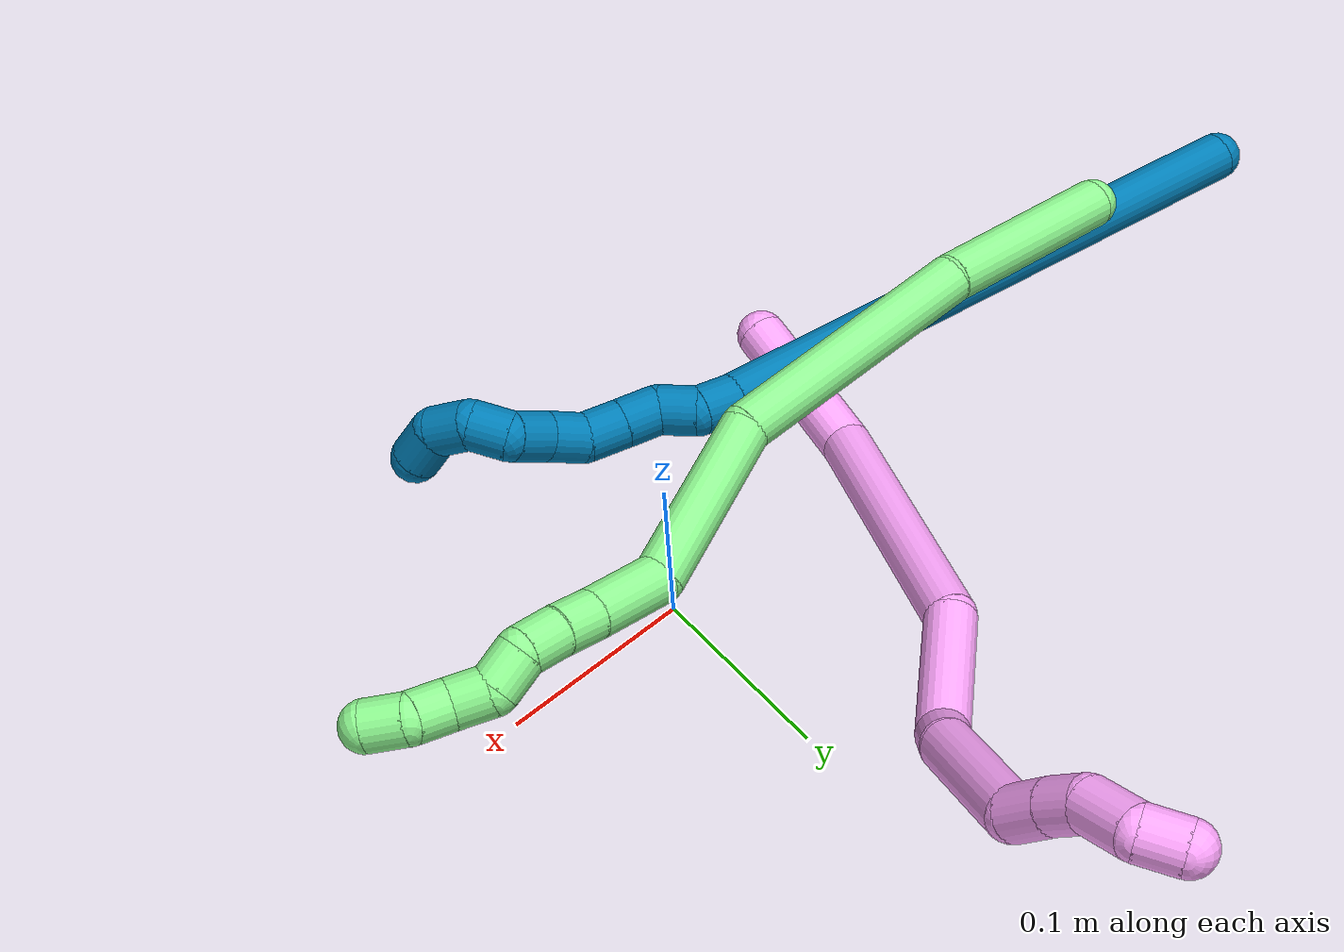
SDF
<sdf version="1.7">
 <world name="default">
  <model name="4">
   <static>0</static>
   <link name="4">
    <collision name="collision-cylinder-e_1_1_4">
     <pose>-0.00235 0.033669 0.022317 -0.985454 -0.05811 0.031205</pose>
     <geometry><cylinder><radius>0.0125</radius><length>0.080925</length></cylinder></geometry>
     <surface>
      <friction><ode><mu>1.16</mu><mu2>1.16</mu2><slip1>0</slip1><slip2>0</slip2></ode></friction>
      <contact><ode><kp>1e+06</kp><kd>1</kd><max_vel>0</max_vel><min_depth>0.001</min_depth></ode></contact>
     </surface>
    </collision>
    <visual name="visual-cylinder-e_1_1_4">
     <pose>-0.00235 0.033669 0.022317 -0.985454 -0.05811 0.031205</pose>
     <geometry><cylinder><radius>0.0125</radius><length>0.080925</length></cylinder></geometry>
     <material><ambient>1 0.65098 0.996078 1</ambient></material>
    </visual>
    <collision name="collision-cylinder-e_2_4_5">
     <pose>-0.016214 0.106801 0.111597 -0.532527 -0.147071 0.040179</pose>
     <geometry><cylinder><radius>0.0125</radius><length>0.157147</length></cylinder></geometry>
     <surface>
      <friction><ode><mu>1.16</mu><mu2>1.16</mu2><slip1>0</slip1><slip2>0</slip2></ode></friction>
      <contact><ode><kp>1e+06</kp><kd>1</kd><max_vel>0</max_vel><min_depth>0.001</min_depth></ode></contact>
     </surface>
    </collision>
    <visual name="visual-cylinder-e_2_4_5">
     <pose>-0.016214 0.106801 0.111597 -0.532527 -0.147071 0.040179</pose>
     <geometry><cylinder><radius>0.0125</radius><length>0.157147</length></cylinder></geometry>
     <material><ambient>1 0.65098 0.996078 1</ambient></material>
    </visual>
    <collision name="collision-cylinder-e_3_5_6">
     <pose>-0.017889 0.159327 0.208093 -0.41647 0.295739 -0.062928</pose>
     <geometry><cylinder><radius>0.0125</radius><length>0.06752</length></cylinder></geometry>
     <surface>
      <friction><ode><mu>1.16</mu><mu2>1.16</mu2><slip1>0</slip1><slip2>0</slip2></ode></friction>
      <contact><ode><kp>1e+06</kp><kd>1</kd><max_vel>0</max_vel><min_depth>0.001</min_depth></ode></contact>
     </surface>
    </collision>
    <visual name="visual-cylinder-e_3_5_6">
     <pose>-0.017889 0.159327 0.208093 -0.41647 0.295739 -0.062928</pose>
     <geometry><cylinder><radius>0.0125</radius><length>0.06752</length></cylinder></geometry>
     <material><ambient>1 0.65098 0.996078 1</ambient></material>
    </visual>
    <collision name="collision-cylinder-e_4_6_7">
     <pose>-0.01097 0.17315 0.247457 -0.077043 -0.28796 0.011175</pose>
     <geometry><cylinder><radius>0.0125</radius><length>0.020567</length></cylinder></geometry>
     <surface>
      <friction><ode><mu>1.16</mu><mu2>1.16</mu2><slip1>0</slip1><slip2>0</slip2></ode></friction>
      <contact><ode><kp>1e+06</kp><kd>1</kd><max_vel>0</max_vel><min_depth>0.001</min_depth></ode></contact>
     </surface>
    </collision>
    <visual name="visual-cylinder-e_4_6_7">
     <pose>-0.01097 0.17315 0.247457 -0.077043 -0.28796 0.011175</pose>
     <geometry><cylinder><radius>0.0125</radius><length>0.020567</length></cylinder></geometry>
     <material><ambient>1 0.65098 0.996078 1</ambient></material>
    </visual>
    <collision name="collision-cylinder-e_5_7_8">
     <pose>-0.027659 0.187051 0.292526 -0.356979 -0.350935 0.063948</pose>
     <geometry><cylinder><radius>0.0125</radius><length>0.0801</length></cylinder></geometry>
     <surface>
      <friction><ode><mu>1.16</mu><mu2>1.16</mu2><slip1>0</slip1><slip2>0</slip2></ode></friction>
      <contact><ode><kp>1e+06</kp><kd>1</kd><max_vel>0</max_vel><min_depth>0.001</min_depth></ode></contact>
     </surface>
    </collision>
    <visual name="visual-cylinder-e_5_7_8">
     <pose>-0.027659 0.187051 0.292526 -0.356979 -0.350935 0.063948</pose>
     <geometry><cylinder><radius>0.0125</radius><length>0.0801</length></cylinder></geometry>
     <material><ambient>1 0.65098 0.996078 1</ambient></material>
    </visual>
    <collision name="collision-cylinder-e_6_8_9">
     <pose>-0.051118 0.203247 0.333609 -0.481427 -0.973301 0.25831</pose>
     <geometry><cylinder><radius>0.0125</radius><length>0.023444</length></cylinder></geometry>
     <surface>
      <friction><ode><mu>1.16</mu><mu2>1.16</mu2><slip1>0</slip1><slip2>0</slip2></ode></friction>
      <contact><ode><kp>1e+06</kp><kd>1</kd><max_vel>0</max_vel><min_depth>0.001</min_depth></ode></contact>
     </surface>
    </collision>
    <visual name="visual-cylinder-e_6_8_9">
     <pose>-0.051118 0.203247 0.333609 -0.481427 -0.973301 0.25831</pose>
     <geometry><cylinder><radius>0.0125</radius><length>0.023444</length></cylinder></geometry>
     <material><ambient>1 0.65098 0.996078 1</ambient></material>
    </visual>
    <collision name="collision-cylinder-e_7_9_10">
     <pose>-0.06872 0.209468 0.344876 -0.528642 -0.899785 0.259936</pose>
     <geometry><cylinder><radius>0.0125</radius><length>0.020201</length></cylinder></geometry>
     <surface>
      <friction><ode><mu>1.16</mu><mu2>1.16</mu2><slip1>0</slip1><slip2>0</slip2></ode></friction>
      <contact><ode><kp>1e+06</kp><kd>1</kd><max_vel>0</max_vel><min_depth>0.001</min_depth></ode></contact>
     </surface>
    </collision>
    <visual name="visual-cylinder-e_7_9_10">
     <pose>-0.06872 0.209468 0.344876 -0.528642 -0.899785 0.259936</pose>
     <geometry><cylinder><radius>0.0125</radius><length>0.020201</length></cylinder></geometry>
     <material><ambient>1 0.65098 0.996078 1</ambient></material>
    </visual>
    <collision name="collision-cylinder-e_8_10_11">
     <pose>-0.08335 0.220955 0.360254 -0.696186 -0.477939 0.176349</pose>
     <geometry><cylinder><radius>0.0125</radius><length>0.029221</length></cylinder></geometry>
     <surface>
      <friction><ode><mu>1.16</mu><mu2>1.16</mu2><slip1>0</slip1><slip2>0</slip2></ode></friction>
      <contact><ode><kp>1e+06</kp><kd>1</kd><max_vel>0</max_vel><min_depth>0.001</min_depth></ode></contact>
     </surface>
    </collision>
    <visual name="visual-cylinder-e_8_10_11">
     <pose>-0.08335 0.220955 0.360254 -0.696186 -0.477939 0.176349</pose>
     <geometry><cylinder><radius>0.0125</radius><length>0.029221</length></cylinder></geometry>
     <material><ambient>1 0.65098 0.996078 1</ambient></material>
    </visual>
    <collision name="collision-cylinder-e_9_11_2">
     <pose>-0.095273 0.238309 0.37074 -1.51201 -0.521744 0.493166</pose>
     <geometry><cylinder><radius>0.0125</radius><length>0.020877</length></cylinder></geometry>
     <surface>
      <friction><ode><mu>1.16</mu><mu2>1.16</mu2><slip1>0</slip1><slip2>0</slip2></ode></friction>
      <contact><ode><kp>1e+06</kp><kd>1</kd><max_vel>0</max_vel><min_depth>0.001</min_depth></ode></contact>
     </surface>
    </collision>
    <visual name="visual-cylinder-e_9_11_2">
     <pose>-0.095273 0.238309 0.37074 -1.51201 -0.521744 0.493166</pose>
     <geometry><cylinder><radius>0.0125</radius><length>0.020877</length></cylinder></geometry>
     <material><ambient>1 0.65098 0.996078 1</ambient></material>
    </visual>
    <collision name="collision-sphere-2">
     <pose>-0.100475 0.247343 0.371272 0 -0 0</pose>
     <geometry><sphere><radius>0.0125</radius></sphere></geometry>
     <surface>
      <friction><ode><mu>1.16</mu><mu2>1.16</mu2><slip1>0</slip1><slip2>0</slip2></ode></friction>
      <contact><ode><kp>1e+06</kp><kd>1</kd><max_vel>0</max_vel><min_depth>0.001</min_depth></ode></contact>
     </surface>
    </collision>
    <visual name="visual-sphere-2">
     <pose>-0.100475 0.247343 0.371272 0 -0 0</pose>
     <geometry><sphere><radius>0.0125</radius></sphere></geometry>
     <material><ambient>1 0.65098 0.996078 1</ambient></material>
    </visual>
    <collision name="collision-sphere-11">
     <pose>-0.09007 0.229275 0.370208 0 -0 0</pose>
     <geometry><sphere><radius>0.0125</radius></sphere></geometry>
     <surface>
      <friction><ode><mu>1.16</mu><mu2>1.16</mu2><slip1>0</slip1><slip2>0</slip2></ode></friction>
      <contact><ode><kp>1e+06</kp><kd>1</kd><max_vel>0</max_vel><min_depth>0.001</min_depth></ode></contact>
     </surface>
    </collision>
    <visual name="visual-sphere-11">
     <pose>-0.09007 0.229275 0.370208 0 -0 0</pose>
     <geometry><sphere><radius>0.0125</radius></sphere></geometry>
     <material><ambient>1 0.65098 0.996078 1</ambient></material>
    </visual>
    <collision name="collision-sphere-10">
     <pose>-0.07663 0.212636 0.350299 0 -0 0</pose>
     <geometry><sphere><radius>0.0125</radius></sphere></geometry>
     <surface>
      <friction><ode><mu>1.16</mu><mu2>1.16</mu2><slip1>0</slip1><slip2>0</slip2></ode></friction>
      <contact><ode><kp>1e+06</kp><kd>1</kd><max_vel>0</max_vel><min_depth>0.001</min_depth></ode></contact>
     </surface>
    </collision>
    <visual name="visual-sphere-10">
     <pose>-0.07663 0.212636 0.350299 0 -0 0</pose>
     <geometry><sphere><radius>0.0125</radius></sphere></geometry>
     <material><ambient>1 0.65098 0.996078 1</ambient></material>
    </visual>
    <collision name="collision-sphere-9">
     <pose>-0.060809 0.206301 0.339454 0 -0 0</pose>
     <geometry><sphere><radius>0.0125</radius></sphere></geometry>
     <surface>
      <friction><ode><mu>1.16</mu><mu2>1.16</mu2><slip1>0</slip1><slip2>0</slip2></ode></friction>
      <contact><ode><kp>1e+06</kp><kd>1</kd><max_vel>0</max_vel><min_depth>0.001</min_depth></ode></contact>
     </surface>
    </collision>
    <visual name="visual-sphere-9">
     <pose>-0.060809 0.206301 0.339454 0 -0 0</pose>
     <geometry><sphere><radius>0.0125</radius></sphere></geometry>
     <material><ambient>1 0.65098 0.996078 1</ambient></material>
    </visual>
    <collision name="collision-sphere-4">
     <pose>-0.0047 0.067339 0.044634 0 -0 0</pose>
     <geometry><sphere><radius>0.0125</radius></sphere></geometry>
     <surface>
      <friction><ode><mu>1.16</mu><mu2>1.16</mu2><slip1>0</slip1><slip2>0</slip2></ode></friction>
      <contact><ode><kp>1e+06</kp><kd>1</kd><max_vel>0</max_vel><min_depth>0.001</min_depth></ode></contact>
     </surface>
    </collision>
    <visual name="visual-sphere-4">
     <pose>-0.0047 0.067339 0.044634 0 -0 0</pose>
     <geometry><sphere><radius>0.0125</radius></sphere></geometry>
     <material><ambient>1 0.65098 0.996078 1</ambient></material>
    </visual>
    <collision name="collision-sphere-1">
     <geometry><sphere><radius>0.0125</radius></sphere></geometry>
     <surface>
      <friction><ode><mu>1.16</mu><mu2>1.16</mu2><slip1>0</slip1><slip2>0</slip2></ode></friction>
      <contact><ode><kp>1e+06</kp><kd>1</kd><max_vel>0</max_vel><min_depth>0.001</min_depth></ode></contact>
     </surface>
    </collision>
    <visual name="visual-sphere-1">
     <geometry><sphere><radius>0.0125</radius></sphere></geometry>
     <material><ambient>1 0.65098 0.996078 1</ambient></material>
    </visual>
    <collision name="collision-sphere-8">
     <pose>-0.041427 0.200194 0.327764 0 -0 0</pose>
     <geometry><sphere><radius>0.0125</radius></sphere></geometry>
     <surface>
      <friction><ode><mu>1.16</mu><mu2>1.16</mu2><slip1>0</slip1><slip2>0</slip2></ode></friction>
      <contact><ode><kp>1e+06</kp><kd>1</kd><max_vel>0</max_vel><min_depth>0.001</min_depth></ode></contact>
     </surface>
    </collision>
    <visual name="visual-sphere-8">
     <pose>-0.041427 0.200194 0.327764 0 -0 0</pose>
     <geometry><sphere><radius>0.0125</radius></sphere></geometry>
     <material><ambient>1 0.65098 0.996078 1</ambient></material>
    </visual>
    <collision name="collision-sphere-5">
     <pose>-0.027728 0.146263 0.178559 0 -0 0</pose>
     <geometry><sphere><radius>0.0125</radius></sphere></geometry>
     <surface>
      <friction><ode><mu>1.16</mu><mu2>1.16</mu2><slip1>0</slip1><slip2>0</slip2></ode></friction>
      <contact><ode><kp>1e+06</kp><kd>1</kd><max_vel>0</max_vel><min_depth>0.001</min_depth></ode></contact>
     </surface>
    </collision>
    <visual name="visual-sphere-5">
     <pose>-0.027728 0.146263 0.178559 0 -0 0</pose>
     <geometry><sphere><radius>0.0125</radius></sphere></geometry>
     <material><ambient>1 0.65098 0.996078 1</ambient></material>
    </visual>
    <collision name="collision-sphere-6">
     <pose>-0.00805 0.172391 0.237627 0 -0 0</pose>
     <geometry><sphere><radius>0.0125</radius></sphere></geometry>
     <surface>
      <friction><ode><mu>1.16</mu><mu2>1.16</mu2><slip1>0</slip1><slip2>0</slip2></ode></friction>
      <contact><ode><kp>1e+06</kp><kd>1</kd><max_vel>0</max_vel><min_depth>0.001</min_depth></ode></contact>
     </surface>
    </collision>
    <visual name="visual-sphere-6">
     <pose>-0.00805 0.172391 0.237627 0 -0 0</pose>
     <geometry><sphere><radius>0.0125</radius></sphere></geometry>
     <material><ambient>1 0.65098 0.996078 1</ambient></material>
    </visual>
    <collision name="collision-sphere-7">
     <pose>-0.013891 0.173909 0.257288 0 -0 0</pose>
     <geometry><sphere><radius>0.0125</radius></sphere></geometry>
     <surface>
      <friction><ode><mu>1.16</mu><mu2>1.16</mu2><slip1>0</slip1><slip2>0</slip2></ode></friction>
      <contact><ode><kp>1e+06</kp><kd>1</kd><max_vel>0</max_vel><min_depth>0.001</min_depth></ode></contact>
     </surface>
    </collision>
    <visual name="visual-sphere-7">
     <pose>-0.013891 0.173909 0.257288 0 -0 0</pose>
     <geometry><sphere><radius>0.0125</radius></sphere></geometry>
     <material><ambient>1 0.65098 0.996078 1</ambient></material>
    </visual>
    <inertial>
     <pose>-0.026797 0.138475 0.189937 0 -0 0</pose>
     <mass>0.5</mass>
     <inertia>
      <ixx>0.00046</ixx>
      <ixy>0</ixy>
      <ixz>0</ixz>
      <iyy>0.000425</iyy>
      <iyz>0</iyz>
      <izz>-0.000142</izz>
     </inertia>
    </inertial>
   </link>
   <pose>-0.121386 -0.071709 0.050592 -0.669943 0.738431 -0.264395</pose>
  </model>
  <model name="9">
   <static>0</static>
   <link name="9">
    <collision name="collision-cylinder-e_1_1_4">
     <pose>0.047563 -0.009894 -0.152399 3.07676 0.301919 2.72155</pose>
     <geometry><cylinder><radius>0.0125</radius><length>0.319909</length></cylinder></geometry>
     <surface>
      <friction><ode><mu>1.16</mu><mu2>1.16</mu2><slip1>0</slip1><slip2>0</slip2></ode></friction>
      <contact><ode><kp>1e+06</kp><kd>1</kd><max_vel>0</max_vel><min_depth>0.001</min_depth></ode></contact>
     </surface>
    </collision>
    <visual name="visual-cylinder-e_1_1_4">
     <pose>0.047563 -0.009894 -0.152399 3.07676 0.301919 2.72155</pose>
     <geometry><cylinder><radius>0.0125</radius><length>0.319909</length></cylinder></geometry>
     <material><ambient>0 0.490196 0.709804 1</ambient></material>
    </visual>
    <collision name="collision-cylinder-e_2_4_5">
     <pose>0.09907 -0.020298 -0.314001 3.08617 0.404349 2.87277</pose>
     <geometry><cylinder><radius>0.0125</radius><length>0.020052</length></cylinder></geometry>
     <surface>
      <friction><ode><mu>1.16</mu><mu2>1.16</mu2><slip1>0</slip1><slip2>0</slip2></ode></friction>
      <contact><ode><kp>1e+06</kp><kd>1</kd><max_vel>0</max_vel><min_depth>0.001</min_depth></ode></contact>
     </surface>
    </collision>
    <visual name="visual-cylinder-e_2_4_5">
     <pose>0.09907 -0.020298 -0.314001 3.08617 0.404349 2.87277</pose>
     <geometry><cylinder><radius>0.0125</radius><length>0.020052</length></cylinder></geometry>
     <material><ambient>0 0.490196 0.709804 1</ambient></material>
    </visual>
    <collision name="collision-cylinder-e_3_5_6">
     <pose>0.110231 -0.025088 -0.32867 2.47744 0.804746 1.77965</pose>
     <geometry><cylinder><radius>0.0125</radius><length>0.020027</length></cylinder></geometry>
     <surface>
      <friction><ode><mu>1.16</mu><mu2>1.16</mu2><slip1>0</slip1><slip2>0</slip2></ode></friction>
      <contact><ode><kp>1e+06</kp><kd>1</kd><max_vel>0</max_vel><min_depth>0.001</min_depth></ode></contact>
     </surface>
    </collision>
    <visual name="visual-cylinder-e_3_5_6">
     <pose>0.110231 -0.025088 -0.32867 2.47744 0.804746 1.77965</pose>
     <geometry><cylinder><radius>0.0125</radius><length>0.020027</length></cylinder></geometry>
     <material><ambient>0 0.490196 0.709804 1</ambient></material>
    </visual>
    <collision name="collision-cylinder-e_4_6_7">
     <pose>0.121309 -0.031053 -0.343206 2.9578 0.396509 2.28142</pose>
     <geometry><cylinder><radius>0.0125</radius><length>0.020001</length></cylinder></geometry>
     <surface>
      <friction><ode><mu>1.16</mu><mu2>1.16</mu2><slip1>0</slip1><slip2>0</slip2></ode></friction>
      <contact><ode><kp>1e+06</kp><kd>1</kd><max_vel>0</max_vel><min_depth>0.001</min_depth></ode></contact>
     </surface>
    </collision>
    <visual name="visual-cylinder-e_4_6_7">
     <pose>0.121309 -0.031053 -0.343206 2.9578 0.396509 2.28142</pose>
     <geometry><cylinder><radius>0.0125</radius><length>0.020001</length></cylinder></geometry>
     <material><ambient>0 0.490196 0.709804 1</ambient></material>
    </visual>
    <collision name="collision-cylinder-e_5_7_8">
     <pose>0.129129 -0.034384 -0.361313 2.96146 0.406788 2.31613</pose>
     <geometry><cylinder><radius>0.0125</radius><length>0.020004</length></cylinder></geometry>
     <surface>
      <friction><ode><mu>1.16</mu><mu2>1.16</mu2><slip1>0</slip1><slip2>0</slip2></ode></friction>
      <contact><ode><kp>1e+06</kp><kd>1</kd><max_vel>0</max_vel><min_depth>0.001</min_depth></ode></contact>
     </surface>
    </collision>
    <visual name="visual-cylinder-e_5_7_8">
     <pose>0.129129 -0.034384 -0.361313 2.96146 0.406788 2.31613</pose>
     <geometry><cylinder><radius>0.0125</radius><length>0.020004</length></cylinder></geometry>
     <material><ambient>0 0.490196 0.709804 1</ambient></material>
    </visual>
    <collision name="collision-cylinder-e_6_8_9">
     <pose>0.139941 -0.035326 -0.377597 -3.04474 0.755209 -2.89842</pose>
     <geometry><cylinder><radius>0.0125</radius><length>0.020001</length></cylinder></geometry>
     <surface>
      <friction><ode><mu>1.16</mu><mu2>1.16</mu2><slip1>0</slip1><slip2>0</slip2></ode></friction>
      <contact><ode><kp>1e+06</kp><kd>1</kd><max_vel>0</max_vel><min_depth>0.001</min_depth></ode></contact>
     </surface>
    </collision>
    <visual name="visual-cylinder-e_6_8_9">
     <pose>0.139941 -0.035326 -0.377597 -3.04474 0.755209 -2.89842</pose>
     <geometry><cylinder><radius>0.0125</radius><length>0.020001</length></cylinder></geometry>
     <material><ambient>0 0.490196 0.709804 1</ambient></material>
    </visual>
    <collision name="collision-cylinder-e_7_9_10">
     <pose>0.152631 -0.032077 -0.392558 -2.82287 0.622942 -2.21556</pose>
     <geometry><cylinder><radius>0.0125</radius><length>0.020002</length></cylinder></geometry>
     <surface>
      <friction><ode><mu>1.16</mu><mu2>1.16</mu2><slip1>0</slip1><slip2>0</slip2></ode></friction>
      <contact><ode><kp>1e+06</kp><kd>1</kd><max_vel>0</max_vel><min_depth>0.001</min_depth></ode></contact>
     </surface>
    </collision>
    <visual name="visual-cylinder-e_7_9_10">
     <pose>0.152631 -0.032077 -0.392558 -2.82287 0.622942 -2.21556</pose>
     <geometry><cylinder><radius>0.0125</radius><length>0.020002</length></cylinder></geometry>
     <material><ambient>0 0.490196 0.709804 1</ambient></material>
    </visual>
    <collision name="collision-cylinder-e_8_10_11">
     <pose>0.167141 -0.032727 -0.404088 2.44449 1.04984 2.02082</pose>
     <geometry><cylinder><radius>0.0125</radius><length>0.020003</length></cylinder></geometry>
     <surface>
      <friction><ode><mu>1.16</mu><mu2>1.16</mu2><slip1>0</slip1><slip2>0</slip2></ode></friction>
      <contact><ode><kp>1e+06</kp><kd>1</kd><max_vel>0</max_vel><min_depth>0.001</min_depth></ode></contact>
     </surface>
    </collision>
    <visual name="visual-cylinder-e_8_10_11">
     <pose>0.167141 -0.032727 -0.404088 2.44449 1.04984 2.02082</pose>
     <geometry><cylinder><radius>0.0125</radius><length>0.020003</length></cylinder></geometry>
     <material><ambient>0 0.490196 0.709804 1</ambient></material>
    </visual>
    <collision name="collision-cylinder-e_9_11_12">
     <pose>0.180571 -0.043622 -0.412161 2.07583 0.495599 0.810442</pose>
     <geometry><cylinder><radius>0.0125</radius><length>0.020001</length></cylinder></geometry>
     <surface>
      <friction><ode><mu>1.16</mu><mu2>1.16</mu2><slip1>0</slip1><slip2>0</slip2></ode></friction>
      <contact><ode><kp>1e+06</kp><kd>1</kd><max_vel>0</max_vel><min_depth>0.001</min_depth></ode></contact>
     </surface>
    </collision>
    <visual name="visual-cylinder-e_9_11_12">
     <pose>0.180571 -0.043622 -0.412161 2.07583 0.495599 0.810442</pose>
     <geometry><cylinder><radius>0.0125</radius><length>0.020001</length></cylinder></geometry>
     <material><ambient>0 0.490196 0.709804 1</ambient></material>
    </visual>
    <collision name="collision-cylinder-e_10_12_2">
     <pose>0.184318 -0.060204 -0.420898 2.03795 -0.101084 -0.163972</pose>
     <geometry><cylinder><radius>0.0125</radius><length>0.02</length></cylinder></geometry>
     <surface>
      <friction><ode><mu>1.16</mu><mu2>1.16</mu2><slip1>0</slip1><slip2>0</slip2></ode></friction>
      <contact><ode><kp>1e+06</kp><kd>1</kd><max_vel>0</max_vel><min_depth>0.001</min_depth></ode></contact>
     </surface>
    </collision>
    <visual name="visual-cylinder-e_10_12_2">
     <pose>0.184318 -0.060204 -0.420898 2.03795 -0.101084 -0.163972</pose>
     <geometry><cylinder><radius>0.0125</radius><length>0.02</length></cylinder></geometry>
     <material><ambient>0 0.490196 0.709804 1</ambient></material>
    </visual>
    <collision name="collision-sphere-2">
     <pose>0.183309 -0.069087 -0.425379 0 -0 0</pose>
     <geometry><sphere><radius>0.0125</radius></sphere></geometry>
     <surface>
      <friction><ode><mu>1.16</mu><mu2>1.16</mu2><slip1>0</slip1><slip2>0</slip2></ode></friction>
      <contact><ode><kp>1e+06</kp><kd>1</kd><max_vel>0</max_vel><min_depth>0.001</min_depth></ode></contact>
     </surface>
    </collision>
    <visual name="visual-sphere-2">
     <pose>0.183309 -0.069087 -0.425379 0 -0 0</pose>
     <geometry><sphere><radius>0.0125</radius></sphere></geometry>
     <material><ambient>0 0.490196 0.709804 1</ambient></material>
    </visual>
    <collision name="collision-sphere-12">
     <pose>0.185327 -0.051321 -0.416418 0 -0 0</pose>
     <geometry><sphere><radius>0.0125</radius></sphere></geometry>
     <surface>
      <friction><ode><mu>1.16</mu><mu2>1.16</mu2><slip1>0</slip1><slip2>0</slip2></ode></friction>
      <contact><ode><kp>1e+06</kp><kd>1</kd><max_vel>0</max_vel><min_depth>0.001</min_depth></ode></contact>
     </surface>
    </collision>
    <visual name="visual-sphere-12">
     <pose>0.185327 -0.051321 -0.416418 0 -0 0</pose>
     <geometry><sphere><radius>0.0125</radius></sphere></geometry>
     <material><ambient>0 0.490196 0.709804 1</ambient></material>
    </visual>
    <collision name="collision-sphere-11">
     <pose>0.175815 -0.035923 -0.407905 0 -0 0</pose>
     <geometry><sphere><radius>0.0125</radius></sphere></geometry>
     <surface>
      <friction><ode><mu>1.16</mu><mu2>1.16</mu2><slip1>0</slip1><slip2>0</slip2></ode></friction>
      <contact><ode><kp>1e+06</kp><kd>1</kd><max_vel>0</max_vel><min_depth>0.001</min_depth></ode></contact>
     </surface>
    </collision>
    <visual name="visual-sphere-11">
     <pose>0.175815 -0.035923 -0.407905 0 -0 0</pose>
     <geometry><sphere><radius>0.0125</radius></sphere></geometry>
     <material><ambient>0 0.490196 0.709804 1</ambient></material>
    </visual>
    <collision name="collision-sphere-10">
     <pose>0.158466 -0.029531 -0.400272 0 -0 0</pose>
     <geometry><sphere><radius>0.0125</radius></sphere></geometry>
     <surface>
      <friction><ode><mu>1.16</mu><mu2>1.16</mu2><slip1>0</slip1><slip2>0</slip2></ode></friction>
      <contact><ode><kp>1e+06</kp><kd>1</kd><max_vel>0</max_vel><min_depth>0.001</min_depth></ode></contact>
     </surface>
    </collision>
    <visual name="visual-sphere-10">
     <pose>0.158466 -0.029531 -0.400272 0 -0 0</pose>
     <geometry><sphere><radius>0.0125</radius></sphere></geometry>
     <material><ambient>0 0.490196 0.709804 1</ambient></material>
    </visual>
    <collision name="collision-sphere-9">
     <pose>0.146796 -0.034622 -0.384845 0 -0 0</pose>
     <geometry><sphere><radius>0.0125</radius></sphere></geometry>
     <surface>
      <friction><ode><mu>1.16</mu><mu2>1.16</mu2><slip1>0</slip1><slip2>0</slip2></ode></friction>
      <contact><ode><kp>1e+06</kp><kd>1</kd><max_vel>0</max_vel><min_depth>0.001</min_depth></ode></contact>
     </surface>
    </collision>
    <visual name="visual-sphere-9">
     <pose>0.146796 -0.034622 -0.384845 0 -0 0</pose>
     <geometry><sphere><radius>0.0125</radius></sphere></geometry>
     <material><ambient>0 0.490196 0.709804 1</ambient></material>
    </visual>
    <collision name="collision-sphere-4">
     <pose>0.095126 -0.019788 -0.304797 0 -0 0</pose>
     <geometry><sphere><radius>0.0125</radius></sphere></geometry>
     <surface>
      <friction><ode><mu>1.16</mu><mu2>1.16</mu2><slip1>0</slip1><slip2>0</slip2></ode></friction>
      <contact><ode><kp>1e+06</kp><kd>1</kd><max_vel>0</max_vel><min_depth>0.001</min_depth></ode></contact>
     </surface>
    </collision>
    <visual name="visual-sphere-4">
     <pose>0.095126 -0.019788 -0.304797 0 -0 0</pose>
     <geometry><sphere><radius>0.0125</radius></sphere></geometry>
     <material><ambient>0 0.490196 0.709804 1</ambient></material>
    </visual>
    <collision name="collision-sphere-1">
     <geometry><sphere><radius>0.0125</radius></sphere></geometry>
     <surface>
      <friction><ode><mu>1.16</mu><mu2>1.16</mu2><slip1>0</slip1><slip2>0</slip2></ode></friction>
      <contact><ode><kp>1e+06</kp><kd>1</kd><max_vel>0</max_vel><min_depth>0.001</min_depth></ode></contact>
     </surface>
    </collision>
    <visual name="visual-sphere-1">
     <geometry><sphere><radius>0.0125</radius></sphere></geometry>
     <material><ambient>0 0.490196 0.709804 1</ambient></material>
    </visual>
    <collision name="collision-sphere-8">
     <pose>0.133086 -0.03603 -0.37035 0 -0 0</pose>
     <geometry><sphere><radius>0.0125</radius></sphere></geometry>
     <surface>
      <friction><ode><mu>1.16</mu><mu2>1.16</mu2><slip1>0</slip1><slip2>0</slip2></ode></friction>
      <contact><ode><kp>1e+06</kp><kd>1</kd><max_vel>0</max_vel><min_depth>0.001</min_depth></ode></contact>
     </surface>
    </collision>
    <visual name="visual-sphere-8">
     <pose>0.133086 -0.03603 -0.37035 0 -0 0</pose>
     <geometry><sphere><radius>0.0125</radius></sphere></geometry>
     <material><ambient>0 0.490196 0.709804 1</ambient></material>
    </visual>
    <collision name="collision-sphere-5">
     <pose>0.103015 -0.020809 -0.323204 0 -0 0</pose>
     <geometry><sphere><radius>0.0125</radius></sphere></geometry>
     <surface>
      <friction><ode><mu>1.16</mu><mu2>1.16</mu2><slip1>0</slip1><slip2>0</slip2></ode></friction>
      <contact><ode><kp>1e+06</kp><kd>1</kd><max_vel>0</max_vel><min_depth>0.001</min_depth></ode></contact>
     </surface>
    </collision>
    <visual name="visual-sphere-5">
     <pose>0.103015 -0.020809 -0.323204 0 -0 0</pose>
     <geometry><sphere><radius>0.0125</radius></sphere></geometry>
     <material><ambient>0 0.490196 0.709804 1</ambient></material>
    </visual>
    <collision name="collision-sphere-6">
     <pose>0.117447 -0.029367 -0.334137 0 -0 0</pose>
     <geometry><sphere><radius>0.0125</radius></sphere></geometry>
     <surface>
      <friction><ode><mu>1.16</mu><mu2>1.16</mu2><slip1>0</slip1><slip2>0</slip2></ode></friction>
      <contact><ode><kp>1e+06</kp><kd>1</kd><max_vel>0</max_vel><min_depth>0.001</min_depth></ode></contact>
     </surface>
    </collision>
    <visual name="visual-sphere-6">
     <pose>0.117447 -0.029367 -0.334137 0 -0 0</pose>
     <geometry><sphere><radius>0.0125</radius></sphere></geometry>
     <material><ambient>0 0.490196 0.709804 1</ambient></material>
    </visual>
    <collision name="collision-sphere-7">
     <pose>0.125172 -0.032739 -0.352275 0 -0 0</pose>
     <geometry><sphere><radius>0.0125</radius></sphere></geometry>
     <surface>
      <friction><ode><mu>1.16</mu><mu2>1.16</mu2><slip1>0</slip1><slip2>0</slip2></ode></friction>
      <contact><ode><kp>1e+06</kp><kd>1</kd><max_vel>0</max_vel><min_depth>0.001</min_depth></ode></contact>
     </surface>
    </collision>
    <visual name="visual-sphere-7">
     <pose>0.125172 -0.032739 -0.352275 0 -0 0</pose>
     <geometry><sphere><radius>0.0125</radius></sphere></geometry>
     <material><ambient>0 0.490196 0.709804 1</ambient></material>
    </visual>
    <inertial>
     <pose>0.081825 -0.018926 -0.231747 0 -0 0</pose>
     <mass>0.5</mass>
     <inertia>
      <ixx>-0.001307</ixx>
      <ixy>0</ixy>
      <ixz>0</ixz>
      <iyy>0.003591</iyy>
      <iyz>0</iyz>
      <izz>-0.000682</izz>
     </inertia>
    </inertial>
   </link>
   <pose>-0.387907 -0.004112 0.044717 1.59036 -0.500897 -1.37745</pose>
  </model>
  <model name="13">
   <static>0</static>
   <link name="13">
    <collision name="collision-cylinder-e_1_1_4">
     <pose>0.040839 0.013616 0.032104 -0.401127 0.864049 -0.186924</pose>
     <geometry><cylinder><radius>0.0125</radius><length>0.107403</length></cylinder></geometry>
     <surface>
      <friction><ode><mu>1.16</mu><mu2>1.16</mu2><slip1>0</slip1><slip2>0</slip2></ode></friction>
      <contact><ode><kp>1e+06</kp><kd>1</kd><max_vel>0</max_vel><min_depth>0.001</min_depth></ode></contact>
     </surface>
    </collision>
    <visual name="visual-cylinder-e_1_1_4">
     <pose>0.040839 0.013616 0.032104 -0.401127 0.864049 -0.186924</pose>
     <geometry><cylinder><radius>0.0125</radius><length>0.107403</length></cylinder></geometry>
     <material><ambient>0.564706 0.984314 0.572549 1</ambient></material>
    </visual>
    <collision name="collision-cylinder-e_2_4_5">
     <pose>0.128767 0.056968 0.106765 -0.609868 0.73667 -0.241771</pose>
     <geometry><cylinder><radius>0.0125</radius><length>0.140184</length></cylinder></geometry>
     <surface>
      <friction><ode><mu>1.16</mu><mu2>1.16</mu2><slip1>0</slip1><slip2>0</slip2></ode></friction>
      <contact><ode><kp>1e+06</kp><kd>1</kd><max_vel>0</max_vel><min_depth>0.001</min_depth></ode></contact>
     </surface>
    </collision>
    <visual name="visual-cylinder-e_2_4_5">
     <pose>0.128767 0.056968 0.106765 -0.609868 0.73667 -0.241771</pose>
     <geometry><cylinder><radius>0.0125</radius><length>0.140184</length></cylinder></geometry>
     <material><ambient>0.564706 0.984314 0.572549 1</ambient></material>
    </visual>
    <collision name="collision-cylinder-e_3_5_6">
     <pose>0.191702 0.106985 0.185207 -0.514424 0.367007 -0.097558</pose>
     <geometry><cylinder><radius>0.0125</radius><length>0.088318</length></cylinder></geometry>
     <surface>
      <friction><ode><mu>1.16</mu><mu2>1.16</mu2><slip1>0</slip1><slip2>0</slip2></ode></friction>
      <contact><ode><kp>1e+06</kp><kd>1</kd><max_vel>0</max_vel><min_depth>0.001</min_depth></ode></contact>
     </surface>
    </collision>
    <visual name="visual-cylinder-e_3_5_6">
     <pose>0.191702 0.106985 0.185207 -0.514424 0.367007 -0.097558</pose>
     <geometry><cylinder><radius>0.0125</radius><length>0.088318</length></cylinder></geometry>
     <material><ambient>0.564706 0.984314 0.572549 1</ambient></material>
    </visual>
    <collision name="collision-cylinder-e_4_6_7">
     <pose>0.223407 0.131754 0.233337 -0.351293 0.882579 -0.167272</pose>
     <geometry><cylinder><radius>0.0125</radius><length>0.041067</length></cylinder></geometry>
     <surface>
      <friction><ode><mu>1.16</mu><mu2>1.16</mu2><slip1>0</slip1><slip2>0</slip2></ode></friction>
      <contact><ode><kp>1e+06</kp><kd>1</kd><max_vel>0</max_vel><min_depth>0.001</min_depth></ode></contact>
     </surface>
    </collision>
    <visual name="visual-cylinder-e_4_6_7">
     <pose>0.223407 0.131754 0.233337 -0.351293 0.882579 -0.167272</pose>
     <geometry><cylinder><radius>0.0125</radius><length>0.041067</length></cylinder></geometry>
     <material><ambient>0.564706 0.984314 0.572549 1</ambient></material>
    </visual>
    <collision name="collision-cylinder-e_5_7_8">
     <pose>0.247486 0.138293 0.251441 -0.336677 0.923985 -0.168842</pose>
     <geometry><cylinder><radius>0.0125</radius><length>0.020599</length></cylinder></geometry>
     <surface>
      <friction><ode><mu>1.16</mu><mu2>1.16</mu2><slip1>0</slip1><slip2>0</slip2></ode></friction>
      <contact><ode><kp>1e+06</kp><kd>1</kd><max_vel>0</max_vel><min_depth>0.001</min_depth></ode></contact>
     </surface>
    </collision>
    <visual name="visual-cylinder-e_5_7_8">
     <pose>0.247486 0.138293 0.251441 -0.336677 0.923985 -0.168842</pose>
     <geometry><cylinder><radius>0.0125</radius><length>0.020599</length></cylinder></geometry>
     <material><ambient>0.564706 0.984314 0.572549 1</ambient></material>
    </visual>
    <collision name="collision-cylinder-e_6_8_9">
     <pose>0.263659 0.143076 0.26357 -0.411083 0.860568 -0.190794</pose>
     <geometry><cylinder><radius>0.0125</radius><length>0.020981</length></cylinder></geometry>
     <surface>
      <friction><ode><mu>1.16</mu><mu2>1.16</mu2><slip1>0</slip1><slip2>0</slip2></ode></friction>
      <contact><ode><kp>1e+06</kp><kd>1</kd><max_vel>0</max_vel><min_depth>0.001</min_depth></ode></contact>
     </surface>
    </collision>
    <visual name="visual-cylinder-e_6_8_9">
     <pose>0.263659 0.143076 0.26357 -0.411083 0.860568 -0.190794</pose>
     <geometry><cylinder><radius>0.0125</radius><length>0.020981</length></cylinder></geometry>
     <material><ambient>0.564706 0.984314 0.572549 1</ambient></material>
    </visual>
    <collision name="collision-cylinder-e_7_9_10">
     <pose>0.27528 0.152864 0.276355 -0.825123 0.36476 -0.161093</pose>
     <geometry><cylinder><radius>0.0125</radius><length>0.020558</length></cylinder></geometry>
     <surface>
      <friction><ode><mu>1.16</mu><mu2>1.16</mu2><slip1>0</slip1><slip2>0</slip2></ode></friction>
      <contact><ode><kp>1e+06</kp><kd>1</kd><max_vel>0</max_vel><min_depth>0.001</min_depth></ode></contact>
     </surface>
    </collision>
    <visual name="visual-cylinder-e_7_9_10">
     <pose>0.27528 0.152864 0.276355 -0.825123 0.36476 -0.161093</pose>
     <geometry><cylinder><radius>0.0125</radius><length>0.020558</length></cylinder></geometry>
     <material><ambient>0.564706 0.984314 0.572549 1</ambient></material>
    </visual>
    <collision name="collision-cylinder-e_8_10_11">
     <pose>0.286204 0.167158 0.283897 -1.42982 0.781649 -0.68699</pose>
     <geometry><cylinder><radius>0.0125</radius><length>0.020604</length></cylinder></geometry>
     <surface>
      <friction><ode><mu>1.16</mu><mu2>1.16</mu2><slip1>0</slip1><slip2>0</slip2></ode></friction>
      <contact><ode><kp>1e+06</kp><kd>1</kd><max_vel>0</max_vel><min_depth>0.001</min_depth></ode></contact>
     </surface>
    </collision>
    <visual name="visual-cylinder-e_8_10_11">
     <pose>0.286204 0.167158 0.283897 -1.42982 0.781649 -0.68699</pose>
     <geometry><cylinder><radius>0.0125</radius><length>0.020604</length></cylinder></geometry>
     <material><ambient>0.564706 0.984314 0.572549 1</ambient></material>
    </visual>
    <collision name="collision-cylinder-e_9_11_12">
     <pose>0.302044 0.177292 0.289275 -0.58713 1.02392 -0.336533</pose>
     <geometry><cylinder><radius>0.0125</radius><length>0.020097</length></cylinder></geometry>
     <surface>
      <friction><ode><mu>1.16</mu><mu2>1.16</mu2><slip1>0</slip1><slip2>0</slip2></ode></friction>
      <contact><ode><kp>1e+06</kp><kd>1</kd><max_vel>0</max_vel><min_depth>0.001</min_depth></ode></contact>
     </surface>
    </collision>
    <visual name="visual-cylinder-e_9_11_12">
     <pose>0.302044 0.177292 0.289275 -0.58713 1.02392 -0.336533</pose>
     <geometry><cylinder><radius>0.0125</radius><length>0.020097</length></cylinder></geometry>
     <material><ambient>0.564706 0.984314 0.572549 1</ambient></material>
    </visual>
    <collision name="collision-cylinder-e_10_12_2">
     <pose>0.317828 0.187201 0.292709 -1.70069 0.794341 -0.891494</pose>
     <geometry><cylinder><radius>0.0125</radius><length>0.020189</length></cylinder></geometry>
     <surface>
      <friction><ode><mu>1.16</mu><mu2>1.16</mu2><slip1>0</slip1><slip2>0</slip2></ode></friction>
      <contact><ode><kp>1e+06</kp><kd>1</kd><max_vel>0</max_vel><min_depth>0.001</min_depth></ode></contact>
     </surface>
    </collision>
    <visual name="visual-cylinder-e_10_12_2">
     <pose>0.317828 0.187201 0.292709 -1.70069 0.794341 -0.891494</pose>
     <geometry><cylinder><radius>0.0125</radius><length>0.020189</length></cylinder></geometry>
     <material><ambient>0.564706 0.984314 0.572549 1</ambient></material>
    </visual>
    <collision name="collision-sphere-2">
     <pose>0.32503 0.194215 0.291793 0 -0 0</pose>
     <geometry><sphere><radius>0.0125</radius></sphere></geometry>
     <surface>
      <friction><ode><mu>1.16</mu><mu2>1.16</mu2><slip1>0</slip1><slip2>0</slip2></ode></friction>
      <contact><ode><kp>1e+06</kp><kd>1</kd><max_vel>0</max_vel><min_depth>0.001</min_depth></ode></contact>
     </surface>
    </collision>
    <visual name="visual-sphere-2">
     <pose>0.32503 0.194215 0.291793 0 -0 0</pose>
     <geometry><sphere><radius>0.0125</radius></sphere></geometry>
     <material><ambient>0.564706 0.984314 0.572549 1</ambient></material>
    </visual>
    <collision name="collision-sphere-12">
     <pose>0.310627 0.180187 0.293625 0 -0 0</pose>
     <geometry><sphere><radius>0.0125</radius></sphere></geometry>
     <surface>
      <friction><ode><mu>1.16</mu><mu2>1.16</mu2><slip1>0</slip1><slip2>0</slip2></ode></friction>
      <contact><ode><kp>1e+06</kp><kd>1</kd><max_vel>0</max_vel><min_depth>0.001</min_depth></ode></contact>
     </surface>
    </collision>
    <visual name="visual-sphere-12">
     <pose>0.310627 0.180187 0.293625 0 -0 0</pose>
     <geometry><sphere><radius>0.0125</radius></sphere></geometry>
     <material><ambient>0.564706 0.984314 0.572549 1</ambient></material>
    </visual>
    <collision name="collision-sphere-11">
     <pose>0.293461 0.174397 0.284925 0 -0 0</pose>
     <geometry><sphere><radius>0.0125</radius></sphere></geometry>
     <surface>
      <friction><ode><mu>1.16</mu><mu2>1.16</mu2><slip1>0</slip1><slip2>0</slip2></ode></friction>
      <contact><ode><kp>1e+06</kp><kd>1</kd><max_vel>0</max_vel><min_depth>0.001</min_depth></ode></contact>
     </surface>
    </collision>
    <visual name="visual-sphere-11">
     <pose>0.293461 0.174397 0.284925 0 -0 0</pose>
     <geometry><sphere><radius>0.0125</radius></sphere></geometry>
     <material><ambient>0.564706 0.984314 0.572549 1</ambient></material>
    </visual>
    <collision name="collision-sphere-10">
     <pose>0.278947 0.159918 0.28287 0 -0 0</pose>
     <geometry><sphere><radius>0.0125</radius></sphere></geometry>
     <surface>
      <friction><ode><mu>1.16</mu><mu2>1.16</mu2><slip1>0</slip1><slip2>0</slip2></ode></friction>
      <contact><ode><kp>1e+06</kp><kd>1</kd><max_vel>0</max_vel><min_depth>0.001</min_depth></ode></contact>
     </surface>
    </collision>
    <visual name="visual-sphere-10">
     <pose>0.278947 0.159918 0.28287 0 -0 0</pose>
     <geometry><sphere><radius>0.0125</radius></sphere></geometry>
     <material><ambient>0.564706 0.984314 0.572549 1</ambient></material>
    </visual>
    <collision name="collision-sphere-9">
     <pose>0.271613 0.14581 0.26984 0 -0 0</pose>
     <geometry><sphere><radius>0.0125</radius></sphere></geometry>
     <surface>
      <friction><ode><mu>1.16</mu><mu2>1.16</mu2><slip1>0</slip1><slip2>0</slip2></ode></friction>
      <contact><ode><kp>1e+06</kp><kd>1</kd><max_vel>0</max_vel><min_depth>0.001</min_depth></ode></contact>
     </surface>
    </collision>
    <visual name="visual-sphere-9">
     <pose>0.271613 0.14581 0.26984 0 -0 0</pose>
     <geometry><sphere><radius>0.0125</radius></sphere></geometry>
     <material><ambient>0.564706 0.984314 0.572549 1</ambient></material>
    </visual>
    <collision name="collision-sphere-4">
     <pose>0.081677 0.027232 0.064207 0 -0 0</pose>
     <geometry><sphere><radius>0.0125</radius></sphere></geometry>
     <surface>
      <friction><ode><mu>1.16</mu><mu2>1.16</mu2><slip1>0</slip1><slip2>0</slip2></ode></friction>
      <contact><ode><kp>1e+06</kp><kd>1</kd><max_vel>0</max_vel><min_depth>0.001</min_depth></ode></contact>
     </surface>
    </collision>
    <visual name="visual-sphere-4">
     <pose>0.081677 0.027232 0.064207 0 -0 0</pose>
     <geometry><sphere><radius>0.0125</radius></sphere></geometry>
     <material><ambient>0.564706 0.984314 0.572549 1</ambient></material>
    </visual>
    <collision name="collision-sphere-1">
     <geometry><sphere><radius>0.0125</radius></sphere></geometry>
     <surface>
      <friction><ode><mu>1.16</mu><mu2>1.16</mu2><slip1>0</slip1><slip2>0</slip2></ode></friction>
      <contact><ode><kp>1e+06</kp><kd>1</kd><max_vel>0</max_vel><min_depth>0.001</min_depth></ode></contact>
     </surface>
    </collision>
    <visual name="visual-sphere-1">
     <geometry><sphere><radius>0.0125</radius></sphere></geometry>
     <material><ambient>0.564706 0.984314 0.572549 1</ambient></material>
    </visual>
    <collision name="collision-sphere-8">
     <pose>0.255705 0.140343 0.2573 0 -0 0</pose>
     <geometry><sphere><radius>0.0125</radius></sphere></geometry>
     <surface>
      <friction><ode><mu>1.16</mu><mu2>1.16</mu2><slip1>0</slip1><slip2>0</slip2></ode></friction>
      <contact><ode><kp>1e+06</kp><kd>1</kd><max_vel>0</max_vel><min_depth>0.001</min_depth></ode></contact>
     </surface>
    </collision>
    <visual name="visual-sphere-8">
     <pose>0.255705 0.140343 0.2573 0 -0 0</pose>
     <geometry><sphere><radius>0.0125</radius></sphere></geometry>
     <material><ambient>0.564706 0.984314 0.572549 1</ambient></material>
    </visual>
    <collision name="collision-sphere-5">
     <pose>0.175856 0.086704 0.149324 0 -0 0</pose>
     <geometry><sphere><radius>0.0125</radius></sphere></geometry>
     <surface>
      <friction><ode><mu>1.16</mu><mu2>1.16</mu2><slip1>0</slip1><slip2>0</slip2></ode></friction>
      <contact><ode><kp>1e+06</kp><kd>1</kd><max_vel>0</max_vel><min_depth>0.001</min_depth></ode></contact>
     </surface>
    </collision>
    <visual name="visual-sphere-5">
     <pose>0.175856 0.086704 0.149324 0 -0 0</pose>
     <geometry><sphere><radius>0.0125</radius></sphere></geometry>
     <material><ambient>0.564706 0.984314 0.572549 1</ambient></material>
    </visual>
    <collision name="collision-sphere-6">
     <pose>0.207547 0.127266 0.221091 0 -0 0</pose>
     <geometry><sphere><radius>0.0125</radius></sphere></geometry>
     <surface>
      <friction><ode><mu>1.16</mu><mu2>1.16</mu2><slip1>0</slip1><slip2>0</slip2></ode></friction>
      <contact><ode><kp>1e+06</kp><kd>1</kd><max_vel>0</max_vel><min_depth>0.001</min_depth></ode></contact>
     </surface>
    </collision>
    <visual name="visual-sphere-6">
     <pose>0.207547 0.127266 0.221091 0 -0 0</pose>
     <geometry><sphere><radius>0.0125</radius></sphere></geometry>
     <material><ambient>0.564706 0.984314 0.572549 1</ambient></material>
    </visual>
    <collision name="collision-sphere-7">
     <pose>0.239267 0.136242 0.245583 0 -0 0</pose>
     <geometry><sphere><radius>0.0125</radius></sphere></geometry>
     <surface>
      <friction><ode><mu>1.16</mu><mu2>1.16</mu2><slip1>0</slip1><slip2>0</slip2></ode></friction>
      <contact><ode><kp>1e+06</kp><kd>1</kd><max_vel>0</max_vel><min_depth>0.001</min_depth></ode></contact>
     </surface>
    </collision>
    <visual name="visual-sphere-7">
     <pose>0.239267 0.136242 0.245583 0 -0 0</pose>
     <geometry><sphere><radius>0.0125</radius></sphere></geometry>
     <material><ambient>0.564706 0.984314 0.572549 1</ambient></material>
    </visual>
    <inertial>
     <pose>0.166431 0.088175 0.156635 0 -0 0</pose>
     <mass>0.5</mass>
     <inertia>
      <ixx>0.000266</ixx>
      <ixy>0</ixy>
      <ixz>0</ixz>
      <iyy>0.000332</iyy>
      <iyz>0</iyz>
      <izz>-0.000412</izz>
     </inertia>
    </inertial>
   </link>
   <pose>-0.292017 -0.006155 0.07789 -1.45619 -0.553861 -0.667863</pose>
  </model>
 </world>
</sdf>
